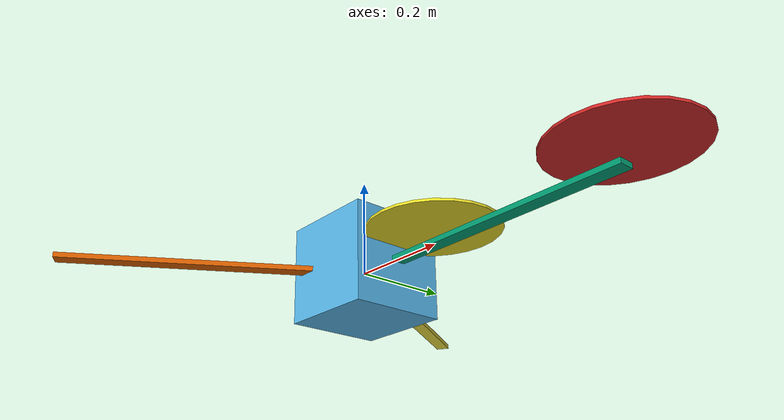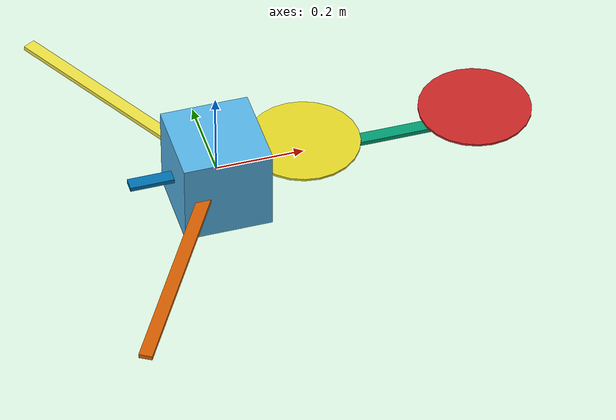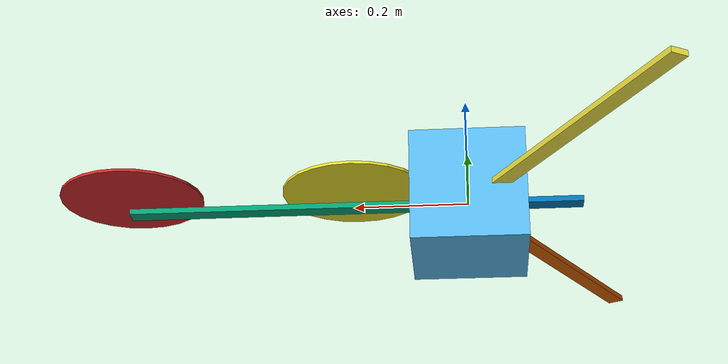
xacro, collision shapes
<?xml version="1.0"?>

<robot name="asymmetric_quadrotor" xmlns:xacro="http://ros.org/wiki/xacro">

  <!-- Included URDF Files -->
  <xacro:include filename="$(find tobas_description)/urdf/components/multirotor_base.xacro"/>

  <!-- Properties  -->
  <xacro:property name="namespace" value="asymmetric_quadrotor"/>
  <xacro:property name="use_mesh_file" value="false"/>
  <xacro:property name="mass_arm" value="0.01"/> <!-- [kg] -->
  <xacro:property name="mass" value="1.0"/> <!-- [kg] -->
  <xacro:property name="body_width" value="0.2"/>
  <xacro:property name="body_height" value="0.2"/>
  <xacro:property name="mass_rotor" value="0.01"/> <!-- [kg] -->
  <xacro:property name="arm_length" value="0.6"/>
  <xacro:property name="rotor_offset_top" value="0.03"/>
  <xacro:property name="radius_rotor" value="0.128"/>

  <!-- Property Blocks -->
  <xacro:property name="body_inertia">
    <inertia ixx="0.01" ixy="0.0" ixz="0.0" iyy="0.01" iyz="0.0" izz="0.02"/> <!-- [kg m^2] -->
  </xacro:property>

  <!-- inertia of a single rotor, assuming it is a cuboid. Height=3mm, width=15mm -->
  <xacro:property name="rotor_inertia">
    <xacro:box_inertia x="${radius_rotor}" y="0.015" z="0.003" mass="${mass_rotor}"/>
  </xacro:property>

  <!-- Instantiate multirotor_base_macro once -->
  <xacro:multirotor_base_macro
    robot_namespace="${namespace}"
    mass="${mass}"
    body_width="${body_width}"
    body_height="${body_height}"
    use_mesh_file="${use_mesh_file}"
    mesh_file="">
    <xacro:insert_block name="body_inertia"/>
  </xacro:multirotor_base_macro>

  <joint name="${namespace}/arm0_joint" type="fixed">
    <origin xyz="0 0 0" rpy="0 0 0"/>
    <parent link="${namespace}/base_link"/>
    <child link="${namespace}/arm0_link"/>
  </joint>

  <link name="${namespace}/arm0_link">
    <xacro:box_inertial x="${arm_length}" y="0.03" z="0.01" mass="${(mass_rotor/3+mass_arm*5/9)*2}">
      <origin xyz="${arm_length/2} 0 0"/>
    </xacro:box_inertial>
    <visual>
      <origin xyz="${arm_length/2} 0 0" rpy="0 0 0"/>
      <geometry>
        <box size="${arm_length} 0.03 0.01"/>
      </geometry>
    </visual>
    <collision>
      <origin xyz="${arm_length/2} 0 0" rpy="0 0 0"/>
      <geometry>
        <box size="${arm_length} 0.03 0.01"/>
      </geometry>
    </collision>
  </link>

  <joint name="${namespace}/arm1_joint" type="fixed">
    <origin xyz="0 0 0" rpy="0 0 ${2*pi/3}"/>
    <parent link="${namespace}/base_link"/>
    <child link="${namespace}/arm1_link"/>
  </joint>

  <link name="${namespace}/arm1_link">
    <xacro:box_inertial x="${arm_length}" y="0.03" z="0.01" mass="${mass_arm}">
      <origin xyz="${arm_length/2} 0 0"/>
    </xacro:box_inertial>
    <visual>
      <origin xyz="${arm_length/2} 0 0" rpy="0 0 0"/>
      <geometry>
        <box size="${arm_length} 0.03 0.01"/>
      </geometry>
    </visual>
    <collision>
      <origin xyz="${arm_length/2} 0 0" rpy="0 0 0"/>
      <geometry>
        <box size="${arm_length} 0.03 0.01"/>
      </geometry>
    </collision>
  </link>

  <joint name="${namespace}/arm2_joint" type="fixed">
    <origin xyz="0 0 0" rpy="0 0 ${pi}"/>
    <parent link="${namespace}/base_link"/>
    <child link="${namespace}/arm2_link"/>
  </joint>

  <link name="${namespace}/arm2_link">
    <xacro:box_inertial x="${arm_length/3}" y="0.03" z="0.01" mass="${mass_arm/3}">
      <origin xyz="${arm_length/6} 0 0"/>
    </xacro:box_inertial>
    <visual>
      <origin xyz="${arm_length/6} 0 0" rpy="0 0 0"/>
      <geometry>
        <box size="${arm_length/3} 0.03 0.01"/>
      </geometry>
    </visual>
    <collision>
      <origin xyz="${arm_length/6} 0 0" rpy="0 0 0"/>
      <geometry>
        <box size="${arm_length/3} 0.03 0.01"/>
      </geometry>
    </collision>
  </link>

  <joint name="${namespace}/arm3_joint" type="fixed">
    <origin xyz="0 0 0" rpy="0 0 -${2*pi/3}"/>
    <parent link="${namespace}/base_link"/>
    <child link="${namespace}/arm3_link"/>
  </joint>

  <link name="${namespace}/arm3_link">
    <xacro:box_inertial x="${arm_length}" y="0.03" z="0.01" mass="${mass_arm}">
      <origin xyz="${arm_length/2} 0 0"/>
    </xacro:box_inertial>
    <visual>
      <origin xyz="${arm_length/2} 0 0" rpy="0 0 0"/>
      <geometry>
        <box size="${arm_length} 0.03 0.01"/>
      </geometry>
    </visual>
    <collision>
      <origin xyz="${arm_length/2} 0 0" rpy="0 0 0"/>
      <geometry>
        <box size="${arm_length} 0.03 0.01"/>
      </geometry>
    </collision>
  </link>

  <!-- Instantiate rotors -->
  <xacro:vertical_rotor
    robot_namespace="${namespace}"
    direction="ccw"
    parent="${namespace}/base_link"
    mass_rotor="${mass_rotor}"
    radius_rotor="${radius_rotor}"
    motor_number="0"
    color="Red"
    use_own_mesh="false"
    mesh="">
    <origin xyz="${arm_length} 0 ${rotor_offset_top}" rpy="0 0 0"/>
    <xacro:insert_block name="rotor_inertia"/>
  </xacro:vertical_rotor>

  <xacro:vertical_rotor
    robot_namespace="${namespace}"
    direction="cw"
    parent="${namespace}/base_link"
    mass_rotor="${mass_rotor}"
    radius_rotor="${radius_rotor}"
    motor_number="1"
    color="Blue"
    use_own_mesh="false"
    mesh="">
    <origin xyz="${arm_length} 0 ${rotor_offset_top}" rpy="0 0 0"/>
    <xacro:insert_block name="rotor_inertia"/>
  </xacro:vertical_rotor>

  <xacro:vertical_rotor
    robot_namespace="${namespace}"
    direction="ccw"
    parent="${namespace}/base_link"
    mass_rotor="${mass_rotor}"
    radius_rotor="${radius_rotor}"
    motor_number="2"
    color="Yellow"
    use_own_mesh="false"
    mesh="">
    <origin xyz="${arm_length/3} 0 ${rotor_offset_top}" rpy="0 0 0"/>
    <xacro:insert_block name="rotor_inertia"/>
  </xacro:vertical_rotor>

  <xacro:vertical_rotor
    robot_namespace="${namespace}"
    direction="cw"
    parent="${namespace}/base_link"
    mass_rotor="${mass_rotor}"
    radius_rotor="${radius_rotor}"
    motor_number="3"
    color="Blue"
    use_own_mesh="false"
    mesh="">
    <origin xyz="${arm_length} 0 ${rotor_offset_top}" rpy="0 0 0"/>
    <xacro:insert_block name="rotor_inertia"/>
  </xacro:vertical_rotor>

</robot>

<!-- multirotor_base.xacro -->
<robot xmlns:xacro="http://ros.org/wiki/xacro">

  <xacro:include filename="$(find tobas_description)/urdf/components/common.xacro"/>

  <!-- Main multirotor link -->
  <xacro:macro name="multirotor_base_macro" params="robot_namespace
      mass
      body_width
      body_height
      use_mesh_file
      mesh_file
      *inertia">
    <link name="${robot_namespace}/base_link"></link>

    <joint name="${robot_namespace}/base_joint" type="fixed">
      <origin xyz="0 0 0" rpy="0 0 0"/>
      <parent link="${robot_namespace}/base_link"/>
      <child link="${robot_namespace}/base_link_inertia"/>
    </joint>

    <link name="${robot_namespace}/base_link_inertia">
      <inertial>
        <mass value="${mass}"/>
        <origin xyz="0 0 0"/>
        <xacro:insert_block name="inertia"/>
      </inertial>

      <visual>
        <origin xyz="0 0 0" rpy="0 0 0"/>
        <geometry>
          <xacro:if value="${use_mesh_file}">
            <mesh filename="${mesh_file}" scale="1 1 1"/>
          </xacro:if>
          <xacro:unless value="${use_mesh_file}">
            <box size="${body_width} ${body_width} ${body_height}"/>
          </xacro:unless>
        </geometry>
      </visual>

      <collision>
        <origin xyz="0 0 0" rpy="0 0 0"/>
        <geometry>
          <box size="${body_width} ${body_width} ${body_height}"/>
        </geometry>
      </collision>
    </link>
  </xacro:macro>

  <!-- Rotor joint and link -->
  <xacro:macro name="vertical_rotor" params="robot_namespace
      direction
      parent
      mass_rotor
      radius_rotor
      motor_number
      color
      use_own_mesh
      mesh
      *origin
      *inertia">
    <joint name="${robot_namespace}/rotor_${motor_number}_joint" type="continuous">
      <xacro:insert_block name="origin"/>
      <axis xyz="0 0 1"/>
      <parent link="${parent}"/>
      <child link="${robot_namespace}/rotor_${motor_number}"/>
    </joint>

    <link name="${robot_namespace}/rotor_${motor_number}">
      <inertial>
        <mass value="${mass_rotor}"/>
        <xacro:insert_block name="inertia"/>
      </inertial>
      <visual>
        <geometry>
          <xacro:if value="${use_own_mesh}">
            <mesh filename="${mesh}" scale="1 1 1"/>
          </xacro:if>
          <xacro:unless value="${use_own_mesh}">
            <mesh filename="package://tobas_description/meshes/propeller_${direction}.dae" scale="${radius_rotor} ${radius_rotor} ${radius_rotor}"/>
          </xacro:unless>
        </geometry>
      </visual>
      <collision>
        <geometry>
          <cylinder length="0.005" radius="${radius_rotor}"/>
        </geometry>
      </collision>
    </link>

    <gazebo reference="${robot_namespace}/rotor_${motor_number}">
      <material>Gazebo/${color}</material>
    </gazebo>
  </xacro:macro>

  <!-- Virtual frame for visualization -->
  <xacro:macro name="virtual_frame" params="parent name *origin">
    <joint name="${name}_joint" type="fixed">
      <xacro:insert_block name="origin"/>
      <parent link="${parent}"/>
      <child link="${name}_link"/>
    </joint>

    <link name="${name}_link">
      <inertial>
        <mass value="1e-9"/>
        <inertia ixx="1e-9" ixy="0" ixz="0" iyy="1e-9" iyz="0" izz="1e-9"/>
      </inertial>
      <visual>
        <geometry>
          <box size="1e-3 1e-3 1e-3"/>
        </geometry>
        <material name="Red">
          <color rgba="1.0 0.0 0.0 1.0"/>
        </material>
      </visual>
      <collision>
        <geometry>
          <box size="1e-3 1e-3 1e-3"/>
        </geometry>
      </collision>
    </link>
  </xacro:macro>

</robot>

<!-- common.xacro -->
<robot xmlns:xacro="http://ros.org/wiki/xacro">

  <!-- Constants -->
  <xacro:property name="sqrt2" value="1.4142135623730951"/>
  <xacro:property name="sqrt3" value="1.73205080757"/>
  <xacro:property name="sin30" value="0.5"/>
  <xacro:property name="cos30" value="${sqrt3 / 2}"/>
  <xacro:property name="sin45" value="${1 / sqrt2}"/>
  <xacro:property name="cos45" value="${sin45}"/>
  <xacro:property name="sin60" value="${cos30}"/>
  <xacro:property name="cos60" value="${sin30}"/>
  <xacro:property name="deg2rad" value="${pi / 180}"/>
  <xacro:property name="rad2deg" value="${180 / pi}"/>
  <xacro:property name="inch2meter" value="0.0254"/>

  <!-- Colors -->
  <xacro:property name="black">
    <material name="black">
      <color rgba="0 0 0 1"/>
    </material>
  </xacro:property>
  <xacro:property name="white">
    <material name="white">
      <color rgba="1 1 1 1"/>
    </material>
  </xacro:property>
  <xacro:property name="gray">
    <material name="gray">
      <color rgba="0.5 0.5 0.5 1"/>
    </material>
  </xacro:property>
  <xacro:property name="red">
    <material name="red">
      <color rgba="1 0 0 1"/>
    </material>
  </xacro:property>
  <xacro:property name="green">
    <material name="green">
      <color rgba="0 1 0 1"/>
    </material>
  </xacro:property>
  <xacro:property name="blue">
    <material name="blue">
      <color rgba="0 0 1 1"/>
    </material>
  </xacro:property>

  <!-- Collisions -->
  <xacro:macro name="hexagonal_prism_collision" params="side height x0 y0 z0">
    <collision>
      <origin xyz="${x0} ${y0} ${z0}" rpy="0 0 0"/>
      <geometry>
        <box size="${sqrt3*side} ${side} ${height}"/>
      </geometry>
    </collision>
    <collision>
      <origin xyz="${x0} ${y0} ${z0}" rpy="0 0 ${60*deg2rad}"/>
      <geometry>
        <box size="${sqrt3*side} ${side} ${height}"/>
      </geometry>
    </collision>
    <collision>
      <origin xyz="${x0} ${y0} ${z0}" rpy="0 0 ${-60*deg2rad}"/>
      <geometry>
        <box size="${sqrt3*side} ${side} ${height}"/>
      </geometry>
    </collision>
  </xacro:macro>

  <!-- Inertia of primitive shapes -->
  <xacro:macro name="cylinder_inertia" params="radius length mass">
    <inertia ixx="${mass*radius*radius/4 + mass*length*length/12}" ixy="0.0" ixz="0.0" iyy="${mass*radius*radius/4 + mass*length*length/12}" iyz="0.0" izz="${mass*radius*radius/2}"/>
  </xacro:macro>
  <xacro:macro name="sphere_inertia" params="radius mass">
    <inertia ixx="${0.4 * mass * radius*radius}" ixy="0.0" ixz="0.0" iyy="${0.4 * mass * radius*radius}" iyz="0.0" izz="${0.4 * mass * radius*radius}"/>
  </xacro:macro>
  <xacro:macro name="box_inertia" params="x y z mass">
    <inertia ixx="${mass * (y*y + z*z) / 12}" ixy="0.0" ixz="0.0" iyy="${mass * (x*x + z*z) / 12}" iyz="0.0" izz="${mass * (x*x + y*y) / 12}"/>
  </xacro:macro>

  <!-- Macro for the inertial properties of a box -->
  <xacro:macro name="box_inertial" params="x y z mass *origin">
    <inertial>
      <mass value="${mass}"/>
      <xacro:insert_block name="origin"/>
      <xacro:box_inertia x="${x}" y="${y}" z="${z}" mass="${mass}"/>
    </inertial>
  </xacro:macro>

</robot>
